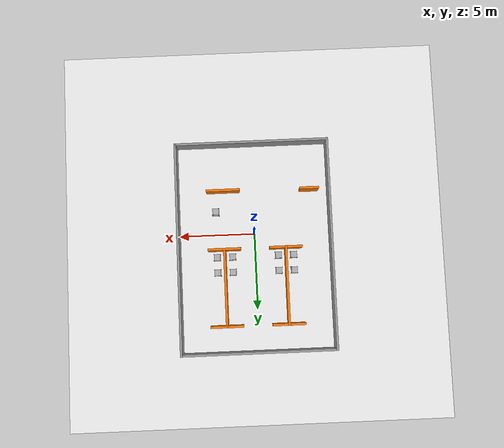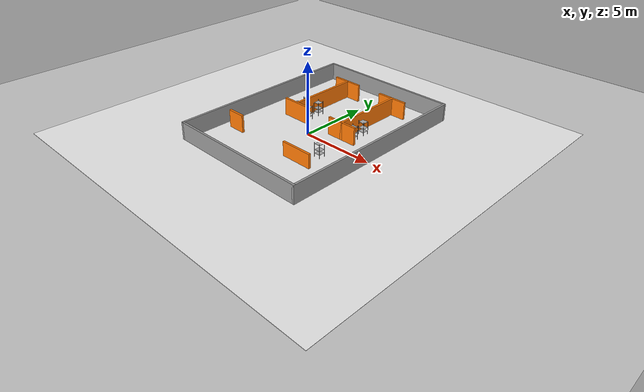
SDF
<sdf version="1.7">
 <world name="default">
  <model name="ground_plane">
   <static>1</static>
   <link name="link">
    <collision name="collision">
     <geometry><plane><normal>0 0 1</normal><size>100 100</size></plane></geometry>
     <surface><friction><ode><mu>100</mu><mu2>50</mu2></ode></friction></surface>
    </collision>
    <visual name="visual">
     <cast_shadows>0</cast_shadows>
     <geometry><plane><normal>0 0 1</normal><size>100 100</size></plane></geometry>
     <material>
      <script><uri>file://media/materials/scripts/gazebo.material</uri><name>Gazebo/Grey</name></script>
     </material>
    </visual>
   </link>
  </model>
  <model name="warehouse_ground">
   <static>1</static>
   <link name="link">
    <pose>0 0 0.01 0 -0 0</pose>
    <collision name="collision">
     <geometry><plane><normal>0 0 1</normal><size>25 25</size></plane></geometry>
     <surface><friction><ode><mu>1</mu><mu2>1</mu2></ode></friction></surface>
    </collision>
    <visual name="visual">
     <geometry><plane><normal>0 0 1</normal><size>25 25</size></plane></geometry>
     <material>
      <ambient>0.95 0.95 0.95 1</ambient>
      <diffuse>0.95 0.95 0.95 1</diffuse>
      <specular>0.1 0.1 0.1 1</specular>
      <emissive>0 0 0 1</emissive>
     </material>
    </visual>
   </link>
  </model>
  <model name="simple_shelf">
   <link name="link">
    <visual name="bottom_shelf_visual">
     <geometry><box><size>0.4 0.4 0.02</size></box></geometry>
     <pose>0 0 0.25 0 -0 0</pose>
     <material><ambient>0.6 0.6 0.6 1</ambient><diffuse>0.7 0.7 0.7 1</diffuse></material>
    </visual>
    <collision name="bottom_shelf_collision">
     <geometry><box><size>0.4 0.4 0.02</size></box></geometry>
     <pose>0 0 0.25 0 -0 0</pose>
    </collision>
    <visual name="middle_shelf_visual">
     <geometry><box><size>0.4 0.4 0.02</size></box></geometry>
     <pose>0 0 0.5 0 -0 0</pose>
     <material><ambient>0.6 0.6 0.6 1</ambient><diffuse>0.7 0.7 0.7 1</diffuse></material>
    </visual>
    <collision name="middle_shelf_collision">
     <geometry><box><size>0.4 0.4 0.02</size></box></geometry>
     <pose>0 0 0.5 0 -0 0</pose>
    </collision>
    <visual name="top_shelf_visual">
     <geometry><box><size>0.4 0.4 0.02</size></box></geometry>
     <pose>0 0 0.9 0 -0 0</pose>
     <material><ambient>0.6 0.6 0.6 1</ambient><diffuse>0.7 0.7 0.7 1</diffuse></material>
    </visual>
    <collision name="top_shelf_collision">
     <geometry><box><size>0.4 0.4 0.02</size></box></geometry>
     <pose>0 0 0.9 0 -0 0</pose>
    </collision>
    <visual name="left_support_visual">
     <geometry><box><size>0.02 0.02 1</size></box></geometry>
     <pose>-0.21 -0.21 0.5 0 -0 0</pose>
     <material><ambient>0.3 0.3 0.3 1</ambient><diffuse>0.3 0.3 0.3 1</diffuse></material>
    </visual>
    <collision name="left_support_collision">
     <geometry><box><size>0.02 0.02 1</size></box></geometry>
     <pose>-0.21 -0.21 0.5 0 -0 0</pose>
    </collision>
    <visual name="right_support_visual">
     <geometry><box><size>0.02 0.02 1</size></box></geometry>
     <pose>0.21 -0.21 0.5 0 -0 0</pose>
     <material><ambient>0.3 0.3 0.3 1</ambient><diffuse>0.3 0.3 0.3 1</diffuse></material>
    </visual>
    <collision name="right_support_collision">
     <geometry><box><size>0.02 0.02 1</size></box></geometry>
     <pose>0.21 -0.21 0.5 0 -0 0</pose>
    </collision>
    <visual name="front_left_support_visual">
     <geometry><box><size>0.02 0.02 1</size></box></geometry>
     <pose>-0.21 0.21 0.5 0 -0 0</pose>
     <material><ambient>0.3 0.3 0.3 1</ambient><diffuse>0.3 0.3 0.3 1</diffuse></material>
    </visual>
    <collision name="front_left_support_collision">
     <geometry><box><size>0.02 0.02 1</size></box></geometry>
     <pose>-0.21 0.21 0.5 0 -0 0</pose>
    </collision>
    <visual name="front_right_support_visual">
     <geometry><box><size>0.02 0.02 1</size></box></geometry>
     <pose>0.21 0.21 0.5 0 -0 0</pose>
     <material><ambient>0.3 0.3 0.3 1</ambient><diffuse>0.3 0.3 0.3 1</diffuse></material>
    </visual>
    <collision name="front_right_support_collision">
     <geometry><box><size>0.02 0.02 1</size></box></geometry>
     <pose>0.21 0.21 0.5 0 -0 0</pose>
    </collision>
    <inertial>
     <inertia><ixx>1</ixx><ixy>0</ixy><ixz>0</ixz><iyy>1</iyy><iyz>0</iyz><izz>1</izz></inertia>
     <mass>1</mass>
    </inertial>
   </link>
   <pose>-1.5 1.5 0.009998 0 -0 0</pose>
  </model>
  <model name="simple_shelf_0">
   <link name="link">
    <visual name="bottom_shelf_visual">
     <geometry><box><size>0.4 0.4 0.02</size></box></geometry>
     <pose>0 0 0.25 0 -0 0</pose>
     <material><ambient>0.6 0.6 0.6 1</ambient><diffuse>0.7 0.7 0.7 1</diffuse></material>
    </visual>
    <collision name="bottom_shelf_collision">
     <geometry><box><size>0.4 0.4 0.02</size></box></geometry>
     <pose>0 0 0.25 0 -0 0</pose>
    </collision>
    <visual name="middle_shelf_visual">
     <geometry><box><size>0.4 0.4 0.02</size></box></geometry>
     <pose>0 0 0.5 0 -0 0</pose>
     <material><ambient>0.6 0.6 0.6 1</ambient><diffuse>0.7 0.7 0.7 1</diffuse></material>
    </visual>
    <collision name="middle_shelf_collision">
     <geometry><box><size>0.4 0.4 0.02</size></box></geometry>
     <pose>0 0 0.5 0 -0 0</pose>
    </collision>
    <visual name="top_shelf_visual">
     <geometry><box><size>0.4 0.4 0.02</size></box></geometry>
     <pose>0 0 0.9 0 -0 0</pose>
     <material><ambient>0.6 0.6 0.6 1</ambient><diffuse>0.7 0.7 0.7 1</diffuse></material>
    </visual>
    <collision name="top_shelf_collision">
     <geometry><box><size>0.4 0.4 0.02</size></box></geometry>
     <pose>0 0 0.9 0 -0 0</pose>
    </collision>
    <visual name="left_support_visual">
     <geometry><box><size>0.02 0.02 1</size></box></geometry>
     <pose>-0.21 -0.21 0.5 0 -0 0</pose>
     <material><ambient>0.3 0.3 0.3 1</ambient><diffuse>0.3 0.3 0.3 1</diffuse></material>
    </visual>
    <collision name="left_support_collision">
     <geometry><box><size>0.02 0.02 1</size></box></geometry>
     <pose>-0.21 -0.21 0.5 0 -0 0</pose>
    </collision>
    <visual name="right_support_visual">
     <geometry><box><size>0.02 0.02 1</size></box></geometry>
     <pose>0.21 -0.21 0.5 0 -0 0</pose>
     <material><ambient>0.3 0.3 0.3 1</ambient><diffuse>0.3 0.3 0.3 1</diffuse></material>
    </visual>
    <collision name="right_support_collision">
     <geometry><box><size>0.02 0.02 1</size></box></geometry>
     <pose>0.21 -0.21 0.5 0 -0 0</pose>
    </collision>
    <visual name="front_left_support_visual">
     <geometry><box><size>0.02 0.02 1</size></box></geometry>
     <pose>-0.21 0.21 0.5 0 -0 0</pose>
     <material><ambient>0.3 0.3 0.3 1</ambient><diffuse>0.3 0.3 0.3 1</diffuse></material>
    </visual>
    <collision name="front_left_support_collision">
     <geometry><box><size>0.02 0.02 1</size></box></geometry>
     <pose>-0.21 0.21 0.5 0 -0 0</pose>
    </collision>
    <visual name="front_right_support_visual">
     <geometry><box><size>0.02 0.02 1</size></box></geometry>
     <pose>0.21 0.21 0.5 0 -0 0</pose>
     <material><ambient>0.3 0.3 0.3 1</ambient><diffuse>0.3 0.3 0.3 1</diffuse></material>
    </visual>
    <collision name="front_right_support_collision">
     <geometry><box><size>0.02 0.02 1</size></box></geometry>
     <pose>0.21 0.21 0.5 0 -0 0</pose>
    </collision>
    <inertial>
     <inertia><ixx>1</ixx><ixy>0</ixy><ixz>0</ixz><iyy>1</iyy><iyz>0</iyz><izz>1</izz></inertia>
     <mass>1</mass>
    </inertial>
   </link>
   <pose>-2.5 1.5 0.009999 1e-06 1e-06 0</pose>
  </model>
  <model name="simple_shelf_1">
   <link name="link">
    <visual name="bottom_shelf_visual">
     <geometry><box><size>0.4 0.4 0.02</size></box></geometry>
     <pose>0 0 0.25 0 -0 0</pose>
     <material><ambient>0.6 0.6 0.6 1</ambient><diffuse>0.7 0.7 0.7 1</diffuse></material>
    </visual>
    <collision name="bottom_shelf_collision">
     <geometry><box><size>0.4 0.4 0.02</size></box></geometry>
     <pose>0 0 0.25 0 -0 0</pose>
    </collision>
    <visual name="middle_shelf_visual">
     <geometry><box><size>0.4 0.4 0.02</size></box></geometry>
     <pose>0 0 0.5 0 -0 0</pose>
     <material><ambient>0.6 0.6 0.6 1</ambient><diffuse>0.7 0.7 0.7 1</diffuse></material>
    </visual>
    <collision name="middle_shelf_collision">
     <geometry><box><size>0.4 0.4 0.02</size></box></geometry>
     <pose>0 0 0.5 0 -0 0</pose>
    </collision>
    <visual name="top_shelf_visual">
     <geometry><box><size>0.4 0.4 0.02</size></box></geometry>
     <pose>0 0 0.9 0 -0 0</pose>
     <material><ambient>0.6 0.6 0.6 1</ambient><diffuse>0.7 0.7 0.7 1</diffuse></material>
    </visual>
    <collision name="top_shelf_collision">
     <geometry><box><size>0.4 0.4 0.02</size></box></geometry>
     <pose>0 0 0.9 0 -0 0</pose>
    </collision>
    <visual name="left_support_visual">
     <geometry><box><size>0.02 0.02 1</size></box></geometry>
     <pose>-0.21 -0.21 0.5 0 -0 0</pose>
     <material><ambient>0.3 0.3 0.3 1</ambient><diffuse>0.3 0.3 0.3 1</diffuse></material>
    </visual>
    <collision name="left_support_collision">
     <geometry><box><size>0.02 0.02 1</size></box></geometry>
     <pose>-0.21 -0.21 0.5 0 -0 0</pose>
    </collision>
    <visual name="right_support_visual">
     <geometry><box><size>0.02 0.02 1</size></box></geometry>
     <pose>0.21 -0.21 0.5 0 -0 0</pose>
     <material><ambient>0.3 0.3 0.3 1</ambient><diffuse>0.3 0.3 0.3 1</diffuse></material>
    </visual>
    <collision name="right_support_collision">
     <geometry><box><size>0.02 0.02 1</size></box></geometry>
     <pose>0.21 -0.21 0.5 0 -0 0</pose>
    </collision>
    <visual name="front_left_support_visual">
     <geometry><box><size>0.02 0.02 1</size></box></geometry>
     <pose>-0.21 0.21 0.5 0 -0 0</pose>
     <material><ambient>0.3 0.3 0.3 1</ambient><diffuse>0.3 0.3 0.3 1</diffuse></material>
    </visual>
    <collision name="front_left_support_collision">
     <geometry><box><size>0.02 0.02 1</size></box></geometry>
     <pose>-0.21 0.21 0.5 0 -0 0</pose>
    </collision>
    <visual name="front_right_support_visual">
     <geometry><box><size>0.02 0.02 1</size></box></geometry>
     <pose>0.21 0.21 0.5 0 -0 0</pose>
     <material><ambient>0.3 0.3 0.3 1</ambient><diffuse>0.3 0.3 0.3 1</diffuse></material>
    </visual>
    <collision name="front_right_support_collision">
     <geometry><box><size>0.02 0.02 1</size></box></geometry>
     <pose>0.21 0.21 0.5 0 -0 0</pose>
    </collision>
    <inertial>
     <inertia><ixx>1</ixx><ixy>0</ixy><ixz>0</ixz><iyy>1</iyy><iyz>0</iyz><izz>1</izz></inertia>
     <mass>1</mass>
    </inertial>
   </link>
   <pose>1.5 1.5 0.009991 -1e-06 -1e-06 0</pose>
  </model>
  <model name="simple_shelf_2">
   <link name="link">
    <visual name="bottom_shelf_visual">
     <geometry><box><size>0.4 0.4 0.02</size></box></geometry>
     <pose>0 0 0.25 0 -0 0</pose>
     <material><ambient>0.6 0.6 0.6 1</ambient><diffuse>0.7 0.7 0.7 1</diffuse></material>
    </visual>
    <collision name="bottom_shelf_collision">
     <geometry><box><size>0.4 0.4 0.02</size></box></geometry>
     <pose>0 0 0.25 0 -0 0</pose>
    </collision>
    <visual name="middle_shelf_visual">
     <geometry><box><size>0.4 0.4 0.02</size></box></geometry>
     <pose>0 0 0.5 0 -0 0</pose>
     <material><ambient>0.6 0.6 0.6 1</ambient><diffuse>0.7 0.7 0.7 1</diffuse></material>
    </visual>
    <collision name="middle_shelf_collision">
     <geometry><box><size>0.4 0.4 0.02</size></box></geometry>
     <pose>0 0 0.5 0 -0 0</pose>
    </collision>
    <visual name="top_shelf_visual">
     <geometry><box><size>0.4 0.4 0.02</size></box></geometry>
     <pose>0 0 0.9 0 -0 0</pose>
     <material><ambient>0.6 0.6 0.6 1</ambient><diffuse>0.7 0.7 0.7 1</diffuse></material>
    </visual>
    <collision name="top_shelf_collision">
     <geometry><box><size>0.4 0.4 0.02</size></box></geometry>
     <pose>0 0 0.9 0 -0 0</pose>
    </collision>
    <visual name="left_support_visual">
     <geometry><box><size>0.02 0.02 1</size></box></geometry>
     <pose>-0.21 -0.21 0.5 0 -0 0</pose>
     <material><ambient>0.3 0.3 0.3 1</ambient><diffuse>0.3 0.3 0.3 1</diffuse></material>
    </visual>
    <collision name="left_support_collision">
     <geometry><box><size>0.02 0.02 1</size></box></geometry>
     <pose>-0.21 -0.21 0.5 0 -0 0</pose>
    </collision>
    <visual name="right_support_visual">
     <geometry><box><size>0.02 0.02 1</size></box></geometry>
     <pose>0.21 -0.21 0.5 0 -0 0</pose>
     <material><ambient>0.3 0.3 0.3 1</ambient><diffuse>0.3 0.3 0.3 1</diffuse></material>
    </visual>
    <collision name="right_support_collision">
     <geometry><box><size>0.02 0.02 1</size></box></geometry>
     <pose>0.21 -0.21 0.5 0 -0 0</pose>
    </collision>
    <visual name="front_left_support_visual">
     <geometry><box><size>0.02 0.02 1</size></box></geometry>
     <pose>-0.21 0.21 0.5 0 -0 0</pose>
     <material><ambient>0.3 0.3 0.3 1</ambient><diffuse>0.3 0.3 0.3 1</diffuse></material>
    </visual>
    <collision name="front_left_support_collision">
     <geometry><box><size>0.02 0.02 1</size></box></geometry>
     <pose>-0.21 0.21 0.5 0 -0 0</pose>
    </collision>
    <visual name="front_right_support_visual">
     <geometry><box><size>0.02 0.02 1</size></box></geometry>
     <pose>0.21 0.21 0.5 0 -0 0</pose>
     <material><ambient>0.3 0.3 0.3 1</ambient><diffuse>0.3 0.3 0.3 1</diffuse></material>
    </visual>
    <collision name="front_right_support_collision">
     <geometry><box><size>0.02 0.02 1</size></box></geometry>
     <pose>0.21 0.21 0.5 0 -0 0</pose>
    </collision>
    <inertial>
     <inertia><ixx>1</ixx><ixy>0</ixy><ixz>0</ixz><iyy>1</iyy><iyz>0</iyz><izz>1</izz></inertia>
     <mass>1</mass>
    </inertial>
   </link>
   <pose>2.5 1.5 0.009999 -1e-06 -1e-06 0</pose>
  </model>
  <model name="simple_shelf_3">
   <link name="link">
    <visual name="bottom_shelf_visual">
     <geometry><box><size>0.4 0.4 0.02</size></box></geometry>
     <pose>0 0 0.25 0 -0 0</pose>
     <material><ambient>0.6 0.6 0.6 1</ambient><diffuse>0.7 0.7 0.7 1</diffuse></material>
    </visual>
    <collision name="bottom_shelf_collision">
     <geometry><box><size>0.4 0.4 0.02</size></box></geometry>
     <pose>0 0 0.25 0 -0 0</pose>
    </collision>
    <visual name="middle_shelf_visual">
     <geometry><box><size>0.4 0.4 0.02</size></box></geometry>
     <pose>0 0 0.5 0 -0 0</pose>
     <material><ambient>0.6 0.6 0.6 1</ambient><diffuse>0.7 0.7 0.7 1</diffuse></material>
    </visual>
    <collision name="middle_shelf_collision">
     <geometry><box><size>0.4 0.4 0.02</size></box></geometry>
     <pose>0 0 0.5 0 -0 0</pose>
    </collision>
    <visual name="top_shelf_visual">
     <geometry><box><size>0.4 0.4 0.02</size></box></geometry>
     <pose>0 0 0.9 0 -0 0</pose>
     <material><ambient>0.6 0.6 0.6 1</ambient><diffuse>0.7 0.7 0.7 1</diffuse></material>
    </visual>
    <collision name="top_shelf_collision">
     <geometry><box><size>0.4 0.4 0.02</size></box></geometry>
     <pose>0 0 0.9 0 -0 0</pose>
    </collision>
    <visual name="left_support_visual">
     <geometry><box><size>0.02 0.02 1</size></box></geometry>
     <pose>-0.21 -0.21 0.5 0 -0 0</pose>
     <material><ambient>0.3 0.3 0.3 1</ambient><diffuse>0.3 0.3 0.3 1</diffuse></material>
    </visual>
    <collision name="left_support_collision">
     <geometry><box><size>0.02 0.02 1</size></box></geometry>
     <pose>-0.21 -0.21 0.5 0 -0 0</pose>
    </collision>
    <visual name="right_support_visual">
     <geometry><box><size>0.02 0.02 1</size></box></geometry>
     <pose>0.21 -0.21 0.5 0 -0 0</pose>
     <material><ambient>0.3 0.3 0.3 1</ambient><diffuse>0.3 0.3 0.3 1</diffuse></material>
    </visual>
    <collision name="right_support_collision">
     <geometry><box><size>0.02 0.02 1</size></box></geometry>
     <pose>0.21 -0.21 0.5 0 -0 0</pose>
    </collision>
    <visual name="front_left_support_visual">
     <geometry><box><size>0.02 0.02 1</size></box></geometry>
     <pose>-0.21 0.21 0.5 0 -0 0</pose>
     <material><ambient>0.3 0.3 0.3 1</ambient><diffuse>0.3 0.3 0.3 1</diffuse></material>
    </visual>
    <collision name="front_left_support_collision">
     <geometry><box><size>0.02 0.02 1</size></box></geometry>
     <pose>-0.21 0.21 0.5 0 -0 0</pose>
    </collision>
    <visual name="front_right_support_visual">
     <geometry><box><size>0.02 0.02 1</size></box></geometry>
     <pose>0.21 0.21 0.5 0 -0 0</pose>
     <material><ambient>0.3 0.3 0.3 1</ambient><diffuse>0.3 0.3 0.3 1</diffuse></material>
    </visual>
    <collision name="front_right_support_collision">
     <geometry><box><size>0.02 0.02 1</size></box></geometry>
     <pose>0.21 0.21 0.5 0 -0 0</pose>
    </collision>
    <inertial>
     <inertia><ixx>1</ixx><ixy>0</ixy><ixz>0</ixz><iyy>1</iyy><iyz>0</iyz><izz>1</izz></inertia>
     <mass>1</mass>
    </inertial>
   </link>
   <pose>-1.5 2.5 0.009998 0 -0 0</pose>
  </model>
  <model name="simple_shelf_7">
   <link name="link">
    <visual name="bottom_shelf_visual">
     <geometry><box><size>0.4 0.4 0.02</size></box></geometry>
     <pose>0 0 0.25 0 -0 0</pose>
     <material><ambient>0.6 0.6 0.6 1</ambient><diffuse>0.7 0.7 0.7 1</diffuse></material>
    </visual>
    <collision name="bottom_shelf_collision">
     <geometry><box><size>0.4 0.4 0.02</size></box></geometry>
     <pose>0 0 0.25 0 -0 0</pose>
    </collision>
    <visual name="middle_shelf_visual">
     <geometry><box><size>0.4 0.4 0.02</size></box></geometry>
     <pose>0 0 0.5 0 -0 0</pose>
     <material><ambient>0.6 0.6 0.6 1</ambient><diffuse>0.7 0.7 0.7 1</diffuse></material>
    </visual>
    <collision name="middle_shelf_collision">
     <geometry><box><size>0.4 0.4 0.02</size></box></geometry>
     <pose>0 0 0.5 0 -0 0</pose>
    </collision>
    <visual name="top_shelf_visual">
     <geometry><box><size>0.4 0.4 0.02</size></box></geometry>
     <pose>0 0 0.9 0 -0 0</pose>
     <material><ambient>0.6 0.6 0.6 1</ambient><diffuse>0.7 0.7 0.7 1</diffuse></material>
    </visual>
    <collision name="top_shelf_collision">
     <geometry><box><size>0.4 0.4 0.02</size></box></geometry>
     <pose>0 0 0.9 0 -0 0</pose>
    </collision>
    <visual name="left_support_visual">
     <geometry><box><size>0.02 0.02 1</size></box></geometry>
     <pose>-0.21 -0.21 0.5 0 -0 0</pose>
     <material><ambient>0.3 0.3 0.3 1</ambient><diffuse>0.3 0.3 0.3 1</diffuse></material>
    </visual>
    <collision name="left_support_collision">
     <geometry><box><size>0.02 0.02 1</size></box></geometry>
     <pose>-0.21 -0.21 0.5 0 -0 0</pose>
    </collision>
    <visual name="right_support_visual">
     <geometry><box><size>0.02 0.02 1</size></box></geometry>
     <pose>0.21 -0.21 0.5 0 -0 0</pose>
     <material><ambient>0.3 0.3 0.3 1</ambient><diffuse>0.3 0.3 0.3 1</diffuse></material>
    </visual>
    <collision name="right_support_collision">
     <geometry><box><size>0.02 0.02 1</size></box></geometry>
     <pose>0.21 -0.21 0.5 0 -0 0</pose>
    </collision>
    <visual name="front_left_support_visual">
     <geometry><box><size>0.02 0.02 1</size></box></geometry>
     <pose>-0.21 0.21 0.5 0 -0 0</pose>
     <material><ambient>0.3 0.3 0.3 1</ambient><diffuse>0.3 0.3 0.3 1</diffuse></material>
    </visual>
    <collision name="front_left_support_collision">
     <geometry><box><size>0.02 0.02 1</size></box></geometry>
     <pose>-0.21 0.21 0.5 0 -0 0</pose>
    </collision>
    <visual name="front_right_support_visual">
     <geometry><box><size>0.02 0.02 1</size></box></geometry>
     <pose>0.21 0.21 0.5 0 -0 0</pose>
     <material><ambient>0.3 0.3 0.3 1</ambient><diffuse>0.3 0.3 0.3 1</diffuse></material>
    </visual>
    <collision name="front_right_support_collision">
     <geometry><box><size>0.02 0.02 1</size></box></geometry>
     <pose>0.21 0.21 0.5 0 -0 0</pose>
    </collision>
    <inertial>
     <inertia><ixx>1</ixx><ixy>0</ixy><ixz>0</ixz><iyy>1</iyy><iyz>0</iyz><izz>1</izz></inertia>
     <mass>1</mass>
    </inertial>
   </link>
   <pose>-2.5 2.5 0.009999 1e-06 1e-06 0</pose>
  </model>
  <model name="simple_shelf_11">
   <link name="link">
    <visual name="bottom_shelf_visual">
     <geometry><box><size>0.4 0.4 0.02</size></box></geometry>
     <pose>0 0 0.25 0 -0 0</pose>
     <material><ambient>0.6 0.6 0.6 1</ambient><diffuse>0.7 0.7 0.7 1</diffuse></material>
    </visual>
    <collision name="bottom_shelf_collision">
     <geometry><box><size>0.4 0.4 0.02</size></box></geometry>
     <pose>0 0 0.25 0 -0 0</pose>
    </collision>
    <visual name="middle_shelf_visual">
     <geometry><box><size>0.4 0.4 0.02</size></box></geometry>
     <pose>0 0 0.5 0 -0 0</pose>
     <material><ambient>0.6 0.6 0.6 1</ambient><diffuse>0.7 0.7 0.7 1</diffuse></material>
    </visual>
    <collision name="middle_shelf_collision">
     <geometry><box><size>0.4 0.4 0.02</size></box></geometry>
     <pose>0 0 0.5 0 -0 0</pose>
    </collision>
    <visual name="top_shelf_visual">
     <geometry><box><size>0.4 0.4 0.02</size></box></geometry>
     <pose>0 0 0.9 0 -0 0</pose>
     <material><ambient>0.6 0.6 0.6 1</ambient><diffuse>0.7 0.7 0.7 1</diffuse></material>
    </visual>
    <collision name="top_shelf_collision">
     <geometry><box><size>0.4 0.4 0.02</size></box></geometry>
     <pose>0 0 0.9 0 -0 0</pose>
    </collision>
    <visual name="left_support_visual">
     <geometry><box><size>0.02 0.02 1</size></box></geometry>
     <pose>-0.21 -0.21 0.5 0 -0 0</pose>
     <material><ambient>0.3 0.3 0.3 1</ambient><diffuse>0.3 0.3 0.3 1</diffuse></material>
    </visual>
    <collision name="left_support_collision">
     <geometry><box><size>0.02 0.02 1</size></box></geometry>
     <pose>-0.21 -0.21 0.5 0 -0 0</pose>
    </collision>
    <visual name="right_support_visual">
     <geometry><box><size>0.02 0.02 1</size></box></geometry>
     <pose>0.21 -0.21 0.5 0 -0 0</pose>
     <material><ambient>0.3 0.3 0.3 1</ambient><diffuse>0.3 0.3 0.3 1</diffuse></material>
    </visual>
    <collision name="right_support_collision">
     <geometry><box><size>0.02 0.02 1</size></box></geometry>
     <pose>0.21 -0.21 0.5 0 -0 0</pose>
    </collision>
    <visual name="front_left_support_visual">
     <geometry><box><size>0.02 0.02 1</size></box></geometry>
     <pose>-0.21 0.21 0.5 0 -0 0</pose>
     <material><ambient>0.3 0.3 0.3 1</ambient><diffuse>0.3 0.3 0.3 1</diffuse></material>
    </visual>
    <collision name="front_left_support_collision">
     <geometry><box><size>0.02 0.02 1</size></box></geometry>
     <pose>-0.21 0.21 0.5 0 -0 0</pose>
    </collision>
    <visual name="front_right_support_visual">
     <geometry><box><size>0.02 0.02 1</size></box></geometry>
     <pose>0.21 0.21 0.5 0 -0 0</pose>
     <material><ambient>0.3 0.3 0.3 1</ambient><diffuse>0.3 0.3 0.3 1</diffuse></material>
    </visual>
    <collision name="front_right_support_collision">
     <geometry><box><size>0.02 0.02 1</size></box></geometry>
     <pose>0.21 0.21 0.5 0 -0 0</pose>
    </collision>
    <inertial>
     <inertia><ixx>1</ixx><ixy>0</ixy><ixz>0</ixz><iyy>1</iyy><iyz>0</iyz><izz>1</izz></inertia>
     <mass>1</mass>
    </inertial>
   </link>
   <pose>1.5 2.5 0.009991 -1e-06 -1e-06 0</pose>
  </model>
  <model name="simple_shelf_15">
   <link name="link">
    <visual name="bottom_shelf_visual">
     <geometry><box><size>0.4 0.4 0.02</size></box></geometry>
     <pose>0 0 0.25 0 -0 0</pose>
     <material><ambient>0.6 0.6 0.6 1</ambient><diffuse>0.7 0.7 0.7 1</diffuse></material>
    </visual>
    <collision name="bottom_shelf_collision">
     <geometry><box><size>0.4 0.4 0.02</size></box></geometry>
     <pose>0 0 0.25 0 -0 0</pose>
    </collision>
    <visual name="middle_shelf_visual">
     <geometry><box><size>0.4 0.4 0.02</size></box></geometry>
     <pose>0 0 0.5 0 -0 0</pose>
     <material><ambient>0.6 0.6 0.6 1</ambient><diffuse>0.7 0.7 0.7 1</diffuse></material>
    </visual>
    <collision name="middle_shelf_collision">
     <geometry><box><size>0.4 0.4 0.02</size></box></geometry>
     <pose>0 0 0.5 0 -0 0</pose>
    </collision>
    <visual name="top_shelf_visual">
     <geometry><box><size>0.4 0.4 0.02</size></box></geometry>
     <pose>0 0 0.9 0 -0 0</pose>
     <material><ambient>0.6 0.6 0.6 1</ambient><diffuse>0.7 0.7 0.7 1</diffuse></material>
    </visual>
    <collision name="top_shelf_collision">
     <geometry><box><size>0.4 0.4 0.02</size></box></geometry>
     <pose>0 0 0.9 0 -0 0</pose>
    </collision>
    <visual name="left_support_visual">
     <geometry><box><size>0.02 0.02 1</size></box></geometry>
     <pose>-0.21 -0.21 0.5 0 -0 0</pose>
     <material><ambient>0.3 0.3 0.3 1</ambient><diffuse>0.3 0.3 0.3 1</diffuse></material>
    </visual>
    <collision name="left_support_collision">
     <geometry><box><size>0.02 0.02 1</size></box></geometry>
     <pose>-0.21 -0.21 0.5 0 -0 0</pose>
    </collision>
    <visual name="right_support_visual">
     <geometry><box><size>0.02 0.02 1</size></box></geometry>
     <pose>0.21 -0.21 0.5 0 -0 0</pose>
     <material><ambient>0.3 0.3 0.3 1</ambient><diffuse>0.3 0.3 0.3 1</diffuse></material>
    </visual>
    <collision name="right_support_collision">
     <geometry><box><size>0.02 0.02 1</size></box></geometry>
     <pose>0.21 -0.21 0.5 0 -0 0</pose>
    </collision>
    <visual name="front_left_support_visual">
     <geometry><box><size>0.02 0.02 1</size></box></geometry>
     <pose>-0.21 0.21 0.5 0 -0 0</pose>
     <material><ambient>0.3 0.3 0.3 1</ambient><diffuse>0.3 0.3 0.3 1</diffuse></material>
    </visual>
    <collision name="front_left_support_collision">
     <geometry><box><size>0.02 0.02 1</size></box></geometry>
     <pose>-0.21 0.21 0.5 0 -0 0</pose>
    </collision>
    <visual name="front_right_support_visual">
     <geometry><box><size>0.02 0.02 1</size></box></geometry>
     <pose>0.21 0.21 0.5 0 -0 0</pose>
     <material><ambient>0.3 0.3 0.3 1</ambient><diffuse>0.3 0.3 0.3 1</diffuse></material>
    </visual>
    <collision name="front_right_support_collision">
     <geometry><box><size>0.02 0.02 1</size></box></geometry>
     <pose>0.21 0.21 0.5 0 -0 0</pose>
    </collision>
    <inertial>
     <inertia><ixx>1</ixx><ixy>0</ixy><ixz>0</ixz><iyy>1</iyy><iyz>0</iyz><izz>1</izz></inertia>
     <mass>1</mass>
    </inertial>
   </link>
   <pose>2.5 2.5 0.009998 0 -0 0</pose>
  </model>
  <model name="simple_shelf_23">
   <link name="link">
    <visual name="bottom_shelf_visual">
     <geometry><box><size>0.4 0.4 0.02</size></box></geometry>
     <pose>0 0 0.25 0 -0 0</pose>
     <material><ambient>0.6 0.6 0.6 1</ambient><diffuse>0.7 0.7 0.7 1</diffuse></material>
    </visual>
    <collision name="bottom_shelf_collision">
     <geometry><box><size>0.4 0.4 0.02</size></box></geometry>
     <pose>0 0 0.25 0 -0 0</pose>
    </collision>
    <visual name="middle_shelf_visual">
     <geometry><box><size>0.4 0.4 0.02</size></box></geometry>
     <pose>0 0 0.5 0 -0 0</pose>
     <material><ambient>0.6 0.6 0.6 1</ambient><diffuse>0.7 0.7 0.7 1</diffuse></material>
    </visual>
    <collision name="middle_shelf_collision">
     <geometry><box><size>0.4 0.4 0.02</size></box></geometry>
     <pose>0 0 0.5 0 -0 0</pose>
    </collision>
    <visual name="top_shelf_visual">
     <geometry><box><size>0.4 0.4 0.02</size></box></geometry>
     <pose>0 0 0.9 0 -0 0</pose>
     <material><ambient>0.6 0.6 0.6 1</ambient><diffuse>0.7 0.7 0.7 1</diffuse></material>
    </visual>
    <collision name="top_shelf_collision">
     <geometry><box><size>0.4 0.4 0.02</size></box></geometry>
     <pose>0 0 0.9 0 -0 0</pose>
    </collision>
    <visual name="left_support_visual">
     <geometry><box><size>0.02 0.02 1</size></box></geometry>
     <pose>-0.21 -0.21 0.5 0 -0 0</pose>
     <material><ambient>0.3 0.3 0.3 1</ambient><diffuse>0.3 0.3 0.3 1</diffuse></material>
    </visual>
    <collision name="left_support_collision">
     <geometry><box><size>0.02 0.02 1</size></box></geometry>
     <pose>-0.21 -0.21 0.5 0 -0 0</pose>
    </collision>
    <visual name="right_support_visual">
     <geometry><box><size>0.02 0.02 1</size></box></geometry>
     <pose>0.21 -0.21 0.5 0 -0 0</pose>
     <material><ambient>0.3 0.3 0.3 1</ambient><diffuse>0.3 0.3 0.3 1</diffuse></material>
    </visual>
    <collision name="right_support_collision">
     <geometry><box><size>0.02 0.02 1</size></box></geometry>
     <pose>0.21 -0.21 0.5 0 -0 0</pose>
    </collision>
    <visual name="front_left_support_visual">
     <geometry><box><size>0.02 0.02 1</size></box></geometry>
     <pose>-0.21 0.21 0.5 0 -0 0</pose>
     <material><ambient>0.3 0.3 0.3 1</ambient><diffuse>0.3 0.3 0.3 1</diffuse></material>
    </visual>
    <collision name="front_left_support_collision">
     <geometry><box><size>0.02 0.02 1</size></box></geometry>
     <pose>-0.21 0.21 0.5 0 -0 0</pose>
    </collision>
    <visual name="front_right_support_visual">
     <geometry><box><size>0.02 0.02 1</size></box></geometry>
     <pose>0.21 0.21 0.5 0 -0 0</pose>
     <material><ambient>0.3 0.3 0.3 1</ambient><diffuse>0.3 0.3 0.3 1</diffuse></material>
    </visual>
    <collision name="front_right_support_collision">
     <geometry><box><size>0.02 0.02 1</size></box></geometry>
     <pose>0.21 0.21 0.5 0 -0 0</pose>
    </collision>
    <inertial>
     <inertia><ixx>1</ixx><ixy>0</ixy><ixz>0</ixz><iyy>1</iyy><iyz>0</iyz><izz>1</izz></inertia>
     <mass>1</mass>
    </inertial>
   </link>
   <pose>2.5 -1.5 0.009991 -1e-06 -1e-06 0</pose>
  </model>
  <model name="warehouse_building">
   <pose>-0 0.861511 0 0 -0 0</pose>
   <link name="Wall_17">
    <collision name="Wall_17_Collision">
     <geometry><box><size>13.873 0.15 1.25</size></box></geometry>
     <pose>0 0 0.625 0 -0 0</pose>
    </collision>
    <visual name="Wall_17_Visual">
     <pose>0 0 0.625 0 -0 0</pose>
     <geometry><box><size>13.873 0.15 1.25</size></box></geometry>
     <material>
      <script><uri>file://media/materials/scripts/gazebo.material</uri><name>Gazebo/Grey</name></script>
      <ambient>1 1 1 1</ambient>
     </material>
     <meta><layer>0</layer></meta>
    </visual>
    <pose>5 -1.1e-05 0 0 -0 1.5708</pose>
   </link>
   <link name="Wall_20">
    <collision name="Wall_20_Collision">
     <geometry><box><size>13.87 0.15 1.25</size></box></geometry>
     <pose>0 0 0.625 0 -0 0</pose>
    </collision>
    <visual name="Wall_20_Visual">
     <pose>0 0 0.625 0 -0 0</pose>
     <geometry><box><size>13.87 0.15 1.25</size></box></geometry>
     <material>
      <script><uri>file://media/materials/scripts/gazebo.material</uri><name>Gazebo/Grey</name></script>
      <ambient>1 1 1 1</ambient>
     </material>
     <meta><layer>0</layer></meta>
    </visual>
    <pose>-5 -0.001511 0 0 -0 1.5708</pose>
   </link>
   <link name="Wall_22">
    <collision name="Wall_22_Collision">
     <geometry><box><size>10.15 0.15 1.25</size></box></geometry>
     <pose>0 0 0.625 0 -0 0</pose>
    </collision>
    <visual name="Wall_22_Visual">
     <pose>0 0 0.625 0 -0 0</pose>
     <geometry><box><size>10.15 0.15 1.25</size></box></geometry>
     <material>
      <script><uri>file://media/materials/scripts/gazebo.material</uri><name>Gazebo/Grey</name></script>
      <ambient>1 1 1 1</ambient>
     </material>
     <meta><layer>0</layer></meta>
    </visual>
    <pose>0 6.85999 0 0 -0 0.0003</pose>
   </link>
   <link name="Wall_27">
    <collision name="Wall_27_Collision">
     <geometry><box><size>2.2 0.15 1</size></box></geometry>
     <pose>0 0 0.5 0 -0 0</pose>
    </collision>
    <visual name="Wall_27_Visual">
     <pose>0 0 0.5 0 -0 0</pose>
     <geometry><box><size>2.2 0.15 1</size></box></geometry>
     <material>
      <script><uri>file://media/materials/scripts/gazebo.material</uri><name>Gazebo/Grey</name></script>
      <ambient>0.996078 0.47451 0.0196078 1</ambient>
     </material>
     <meta><layer>0</layer></meta>
    </visual>
    <pose>1.975 -3.76151 0 0 -0 3.14159</pose>
   </link>
   <link name="Wall_29">
    <collision name="Wall_29_Collision">
     <geometry><box><size>5.15 0.15 1.25</size></box></geometry>
     <pose>0 0 0.625 0 -0 0</pose>
    </collision>
    <visual name="Wall_29_Visual">
     <pose>0 0 0.625 0 -0 0</pose>
     <geometry><box><size>5.15 0.15 1.25</size></box></geometry>
     <material>
      <script><uri>file://media/materials/scripts/gazebo.material</uri><name>Gazebo/Grey</name></script>
      <ambient>0.996078 0.47451 0.0196078 1</ambient>
     </material>
     <meta><layer>0</layer></meta>
    </visual>
    <pose>-2 2.63849 0 0 -0 1.5708</pose>
   </link>
   <link name="Wall_31">
    <collision name="Wall_31_Collision">
     <geometry><box><size>2.15 0.15 1.25</size></box></geometry>
     <pose>0 0 0.625 0 -0 0</pose>
    </collision>
    <visual name="Wall_31_Visual">
     <pose>0 0 0.625 0 -0 0</pose>
     <geometry><box><size>2.15 0.15 1.25</size></box></geometry>
     <material>
      <script><uri>file://media/materials/scripts/gazebo.material</uri><name>Gazebo/Grey</name></script>
      <ambient>0.996078 0.47451 0.0196078 1</ambient>
     </material>
     <meta><layer>0</layer></meta>
    </visual>
    <pose>-2 5.13849 0 0 -0 0</pose>
   </link>
   <link name="Wall_33">
    <collision name="Wall_33_Collision">
     <geometry><box><size>2.15 0.15 1.25</size></box></geometry>
     <pose>0 0 0.625 0 -0 0</pose>
    </collision>
    <visual name="Wall_33_Visual">
     <pose>0 0 0.625 0 -0 0</pose>
     <geometry><box><size>2.15 0.15 1.25</size></box></geometry>
     <material>
      <script><uri>file://media/materials/scripts/gazebo.material</uri><name>Gazebo/Grey</name></script>
      <ambient>0.996078 0.47451 0.0196078 1</ambient>
     </material>
     <meta><layer>0</layer></meta>
    </visual>
    <pose>-2 0.138489 0 0 -0 0</pose>
   </link>
   <link name="Wall_35">
    <collision name="Wall_35_Collision">
     <geometry><box><size>5.15 0.15 1.25</size></box></geometry>
     <pose>0 0 0.625 0 -0 0</pose>
    </collision>
    <visual name="Wall_35_Visual">
     <pose>0 0 0.625 0 -0 0</pose>
     <geometry><box><size>5.15 0.15 1.25</size></box></geometry>
     <material>
      <script><uri>file://media/materials/scripts/gazebo.material</uri><name>Gazebo/Grey</name></script>
      <ambient>0.996078 0.47451 0.0196078 1</ambient>
     </material>
     <meta><layer>0</layer></meta>
    </visual>
    <pose>2 2.63849 0 0 -0 -1.5708</pose>
   </link>
   <link name="Wall_39">
    <collision name="Wall_39_Collision">
     <geometry><box><size>2.15 0.15 1.25</size></box></geometry>
     <pose>0 0 0.625 0 -0 0</pose>
    </collision>
    <visual name="Wall_39_Visual">
     <pose>0 0 0.625 0 -0 0</pose>
     <geometry><box><size>2.15 0.15 1.25</size></box></geometry>
     <material>
      <script><uri>file://media/materials/scripts/gazebo.material</uri><name>Gazebo/Grey</name></script>
      <ambient>0.996078 0.47451 0.0196078 1</ambient>
     </material>
     <meta><layer>0</layer></meta>
    </visual>
    <pose>2 0.138489 0 0 -0 0</pose>
   </link>
   <link name="Wall_41">
    <collision name="Wall_41_Collision">
     <geometry><box><size>2.15 0.15 1.25</size></box></geometry>
     <pose>0 0 0.625 0 -0 0</pose>
    </collision>
    <visual name="Wall_41_Visual">
     <pose>0 0 0.625 0 -0 0</pose>
     <geometry><box><size>2.15 0.15 1.25</size></box></geometry>
     <material>
      <script><uri>file://media/materials/scripts/gazebo.material</uri><name>Gazebo/Grey</name></script>
      <ambient>0.996078 0.47451 0.0196078 1</ambient>
     </material>
     <meta><layer>0</layer></meta>
    </visual>
    <pose>2 5.13849 0 0 -0 3.14159</pose>
   </link>
   <link name="Wall_43">
    <collision name="Wall_43_Collision">
     <geometry><box><size>10.15 0.15 1.25</size></box></geometry>
     <pose>0 0 0.625 0 -0 0</pose>
    </collision>
    <visual name="Wall_43_Visual">
     <pose>0 0 0.625 0 -0 0</pose>
     <geometry><box><size>10.15 0.15 1.25</size></box></geometry>
     <material>
      <script><uri>file://media/materials/scripts/gazebo.material</uri><name>Gazebo/Grey</name></script>
      <ambient>1 1 1 1</ambient>
     </material>
     <meta><layer>0</layer></meta>
    </visual>
    <pose>0 -6.86151 0 0 -0 0</pose>
   </link>
   <link name="Wall_45">
    <collision name="Wall_45_Collision">
     <geometry><box><size>1.25 0.15 1.25</size></box></geometry>
     <pose>0 0 0.625 0 -0 0</pose>
    </collision>
    <visual name="Wall_45_Visual">
     <pose>0 0 0.625 0 -0 0</pose>
     <geometry><box><size>1.25 0.15 1.25</size></box></geometry>
     <material>
      <script><uri>file://media/materials/scripts/gazebo.material</uri><name>Gazebo/Grey</name></script>
      <ambient>0.996078 0.47451 0.0196078 1</ambient>
     </material>
     <meta><layer>0</layer></meta>
    </visual>
    <pose>-3.697 -3.66151 0 0 -0 0</pose>
   </link>
   <static>1</static>
  </model>
 </world>
</sdf>
